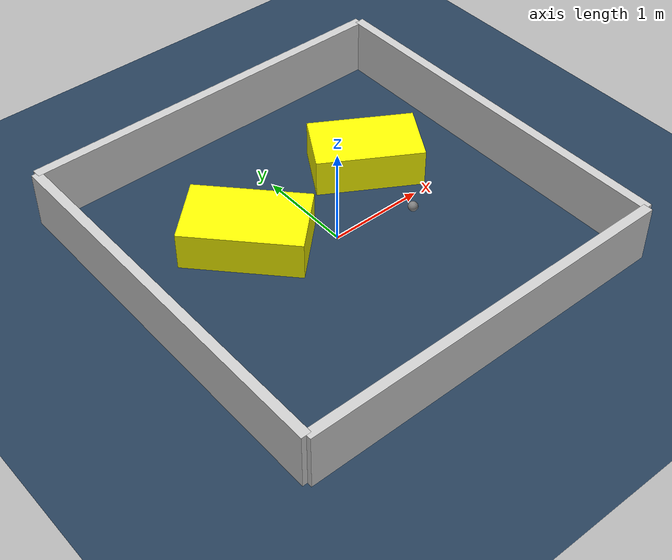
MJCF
<?xml version="1.0" ?>
<mujoco model="generated_environment">
  <option timestep="0.01" integrator="RK4" cone="elliptic"/>
  <default>
    <geom density="1"/>
  </default>
  <asset>
    <texture builtin="gradient" height="3072" rgb1="0.3 0.5 0.7" rgb2="0 0 0" type="skybox" width="512"/>
    <texture builtin="checker" height="300" mark="edge" markrgb="0.8 0.8 0.8" name="groundplane" rgb1="0.2 0.3 0.4" rgb2="0.1 0.2 0.3" type="2d" width="300"/>
    <material name="groundplane" reflectance="0.2" texrepeat="5 5" texture="groundplane" texuniform="true"/>
    <material name="robot" rgba="0.0 1.0 0.0 1"/>
  </asset>
  <worldbody>
    <light dir="0 0 -1" directional="true" pos="0 0 1.5"/>
    <geom condim="4" friction="1.0 0.005 0.001" material="groundplane" name="floor" size="0 0 0.05" type="plane"/>
    <body name="walls">
      <geom name="wall_1" condim="4" pos="-2.0 0.0 0.3" rgba="0.800000011920929 0.800000011920929 0.800000011920929 1.0" size="0.05 2.0 0.3" type="box"/>
      <geom name="wall_2" condim="4" pos="2.0 0.0 0.3" rgba="0.800000011920929 0.800000011920929 0.800000011920929 1.0" size="0.05 2.0 0.3" type="box"/>
      <geom name="wall_3" condim="4" pos="0.0 -2.0 0.3" rgba="0.800000011920929 0.800000011920929 0.800000011920929 1.0" size="2.0 0.05 0.3" type="box"/>
      <geom name="wall_4" condim="4" pos="0.0 2.0 0.3" rgba="0.800000011920929 0.800000011920929 0.800000011920929 1.0" size="2.0 0.05 0.3" type="box"/>
    </body>
    <body name="robot">
      <joint name="joint_x" type="slide" pos="0 0 0" axis="1 0 0"/>
      <joint name="joint_y" type="slide" pos="0 0 0" axis="0 1 0"/>
      <geom name="robot" type="sphere" pos="0.6964446897540548 -0.2955330084882597 0.2" size="0.05" mass="5." friction="1.0 0.005 0.0001" condim="4"/>
      <site name="sensor_ball"/>
    </body>
    <body name="obstacle_1_movable">
      <geom name="obstacle_1_movable" condim="4" pos="-0.7226116268922446 0.46040296478740017 0.2" euler="0 0 223.08580616272033" friction="1.0 0.005 0.001" rgba="1 1 0 1" size="0.3631733879274431 0.5946872765983022 0.2" type="box" mass="0.1"/>
      <joint type="free"/>
    </body>
    <body name="obstacle_2_movable">
      <geom name="obstacle_2_movable" condim="4" pos="0.8738793245545764 0.6010166073670962 0.2" euler="0 0 238.98264763437368" friction="1.0 0.005 0.001" rgba="1 1 0 1" size="0.3245703552639496 0.5451915755995507 0.2" type="box" mass="0.1"/>
      <joint type="free"/>
    </body>
  </worldbody>
  <actuator>
    <motor name="actuator_x" joint="joint_x" gear="1" ctrlrange="-1 1"/>
    <motor name="actuator_y" joint="joint_y" gear="1" ctrlrange="-1 1"/>
  </actuator>
</mujoco>
